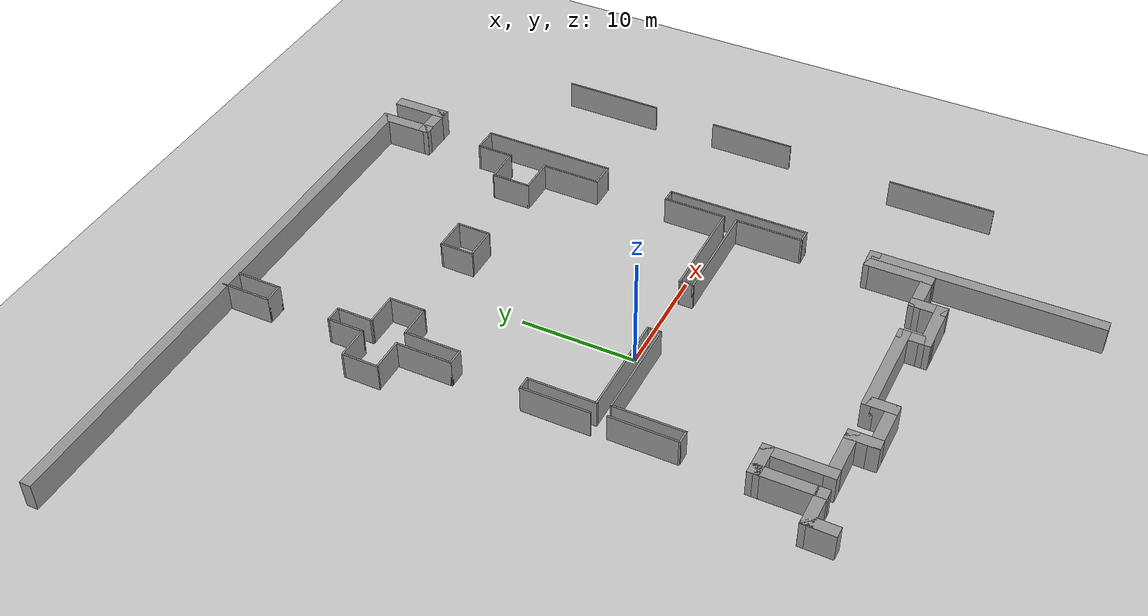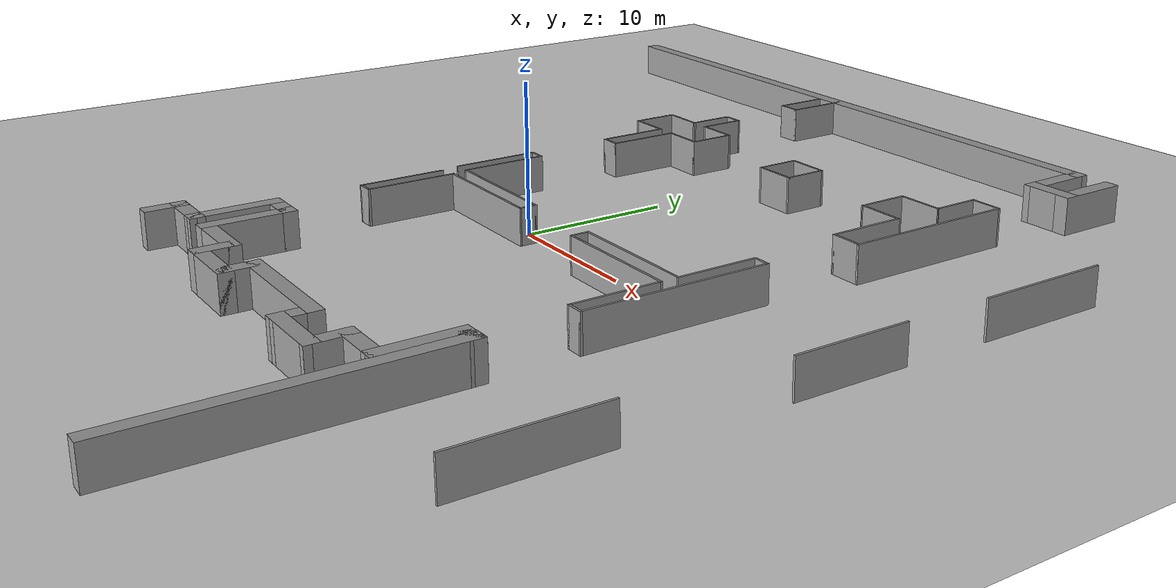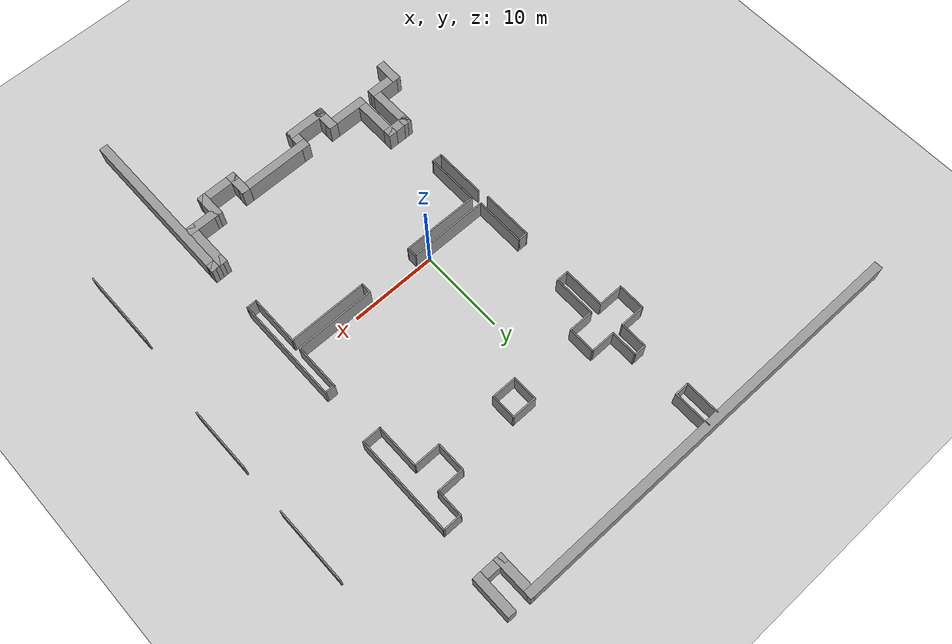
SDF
<sdf version="1.7">
 <world name="default">
  <model name="ground_plane">
   <static>1</static>
   <link name="link">
    <collision name="collision">
     <geometry><plane><normal>0 0 1</normal><size>100 100</size></plane></geometry>
     <surface><friction><ode><mu>100</mu><mu2>50</mu2></ode></friction></surface>
    </collision>
    <visual name="visual">
     <cast_shadows>0</cast_shadows>
     <geometry><plane><normal>0 0 1</normal><size>100 100</size></plane></geometry>
     <material>
      <script><uri>file://media/materials/scripts/gazebo.material</uri><name>Gazebo/Grey</name></script>
     </material>
    </visual>
   </link>
  </model>
  <model name="map7">
   <pose>-22.5342 -8.78038 0 0 -0 0</pose>
   <link name="Wall_10">
    <collision name="Wall_10_Collision">
     <geometry><box><size>3.59994 1 2.5</size></box></geometry>
     <pose>0 0 1.25 0 -0 0</pose>
    </collision>
    <visual name="Wall_10_Visual">
     <pose>0 0 1.25 0 -0 0</pose>
     <geometry><box><size>3.59994 1 2.5</size></box></geometry>
     <material>
      <script><uri>file://media/materials/scripts/gazebo.material</uri><name>Gazebo/Grey</name></script>
      <ambient>1 1 1 1</ambient>
     </material>
     <meta><layer>0</layer></meta>
    </visual>
    <pose>40.1802 37.2854 0 0 -0 0</pose>
   </link>
   <link name="Wall_11">
    <collision name="Wall_11_Collision">
     <geometry><box><size>4.85041 1 2.5</size></box></geometry>
     <pose>0 0 1.25 0 -0 0</pose>
    </collision>
    <visual name="Wall_11_Visual">
     <pose>0 0 1.25 0 -0 0</pose>
     <geometry><box><size>4.85041 1 2.5</size></box></geometry>
     <material>
      <script><uri>file://media/materials/scripts/gazebo.material</uri><name>Gazebo/Grey</name></script>
      <ambient>1 1 1 1</ambient>
     </material>
     <meta><layer>0</layer></meta>
    </visual>
    <pose>41.4802 39.2104 0 0 -0 1.5708</pose>
   </link>
   <link name="Wall_119">
    <collision name="Wall_119_Collision">
     <geometry><box><size>6 0.15 2.5</size></box></geometry>
     <pose>0 0 1.25 0 -0 0</pose>
    </collision>
    <visual name="Wall_119_Visual">
     <pose>0 0 1.25 0 -0 0</pose>
     <geometry><box><size>6 0.15 2.5</size></box></geometry>
     <material>
      <script><uri>file://media/materials/scripts/gazebo.material</uri><name>Gazebo/Grey</name></script>
      <ambient>1 1 1 1</ambient>
     </material>
     <meta><layer>0</layer></meta>
    </visual>
    <pose>13.8301 11.3324 0 0 -0 1.5708</pose>
   </link>
   <link name="Wall_120">
    <collision name="Wall_120_Collision">
     <geometry><box><size>1.25 0.15 2.5</size></box></geometry>
     <pose>0 0 1.25 0 -0 0</pose>
    </collision>
    <visual name="Wall_120_Visual">
     <pose>0 0 1.25 0 -0 0</pose>
     <geometry><box><size>1.25 0.15 2.5</size></box></geometry>
     <material>
      <script><uri>file://media/materials/scripts/gazebo.material</uri><name>Gazebo/Grey</name></script>
      <ambient>1 1 1 1</ambient>
     </material>
     <meta><layer>0</layer></meta>
    </visual>
    <pose>14.3801 14.2574 0 0 -0 0</pose>
   </link>
   <link name="Wall_121">
    <collision name="Wall_121_Collision">
     <geometry><box><size>6 0.15 2.5</size></box></geometry>
     <pose>0 0 1.25 0 -0 0</pose>
    </collision>
    <visual name="Wall_121_Visual">
     <pose>0 0 1.25 0 -0 0</pose>
     <geometry><box><size>6 0.15 2.5</size></box></geometry>
     <material>
      <script><uri>file://media/materials/scripts/gazebo.material</uri><name>Gazebo/Grey</name></script>
      <ambient>1 1 1 1</ambient>
     </material>
     <meta><layer>0</layer></meta>
    </visual>
    <pose>14.9301 11.3324 0 0 -0 -1.5708</pose>
   </link>
   <link name="Wall_122">
    <collision name="Wall_122_Collision">
     <geometry><box><size>9.25 0.15 2.5</size></box></geometry>
     <pose>0 0 1.25 0 -0 0</pose>
    </collision>
    <visual name="Wall_122_Visual">
     <pose>0 0 1.25 0 -0 0</pose>
     <geometry><box><size>9.25 0.15 2.5</size></box></geometry>
     <material>
      <script><uri>file://media/materials/scripts/gazebo.material</uri><name>Gazebo/Grey</name></script>
      <ambient>1 1 1 1</ambient>
     </material>
     <meta><layer>0</layer></meta>
    </visual>
    <pose>19.4801 8.40745 0 0 -0 0</pose>
   </link>
   <link name="Wall_123">
    <collision name="Wall_123_Collision">
     <geometry><box><size>1.25 0.15 2.5</size></box></geometry>
     <pose>0 0 1.25 0 -0 0</pose>
    </collision>
    <visual name="Wall_123_Visual">
     <pose>0 0 1.25 0 -0 0</pose>
     <geometry><box><size>1.25 0.15 2.5</size></box></geometry>
     <material>
      <script><uri>file://media/materials/scripts/gazebo.material</uri><name>Gazebo/Grey</name></script>
      <ambient>1 1 1 1</ambient>
     </material>
     <meta><layer>0</layer></meta>
    </visual>
    <pose>24.0301 7.85745 0 0 -0 -1.5708</pose>
   </link>
   <link name="Wall_124">
    <collision name="Wall_124_Collision">
     <geometry><box><size>9 0.15 2.5</size></box></geometry>
     <pose>0 0 1.25 0 -0 0</pose>
    </collision>
    <visual name="Wall_124_Visual">
     <pose>0 0 1.25 0 -0 0</pose>
     <geometry><box><size>9 0.15 2.5</size></box></geometry>
     <material>
      <script><uri>file://media/materials/scripts/gazebo.material</uri><name>Gazebo/Grey</name></script>
      <ambient>1 1 1 1</ambient>
     </material>
     <meta><layer>0</layer></meta>
    </visual>
    <pose>19.6051 7.30745 0 0 -0 3.14159</pose>
   </link>
   <link name="Wall_125">
    <collision name="Wall_125_Collision">
     <geometry><box><size>6.25 0.15 2.5</size></box></geometry>
     <pose>0 0 1.25 0 -0 0</pose>
    </collision>
    <visual name="Wall_125_Visual">
     <pose>0 0 1.25 0 -0 0</pose>
     <geometry><box><size>6.25 0.15 2.5</size></box></geometry>
     <material>
      <script><uri>file://media/materials/scripts/gazebo.material</uri><name>Gazebo/Grey</name></script>
      <ambient>1 1 1 1</ambient>
     </material>
     <meta><layer>0</layer></meta>
    </visual>
    <pose>15.1801 4.25745 0 0 -0 -1.5708</pose>
   </link>
   <link name="Wall_126">
    <collision name="Wall_126_Collision">
     <geometry><box><size>1.25 0.15 2.5</size></box></geometry>
     <pose>0 0 1.25 0 -0 0</pose>
    </collision>
    <visual name="Wall_126_Visual">
     <pose>0 0 1.25 0 -0 0</pose>
     <geometry><box><size>1.25 0.15 2.5</size></box></geometry>
     <material>
      <script><uri>file://media/materials/scripts/gazebo.material</uri><name>Gazebo/Grey</name></script>
      <ambient>1 1 1 1</ambient>
     </material>
     <meta><layer>0</layer></meta>
    </visual>
    <pose>14.6301 1.20745 0 0 -0 3.14159</pose>
   </link>
   <link name="Wall_127">
    <collision name="Wall_127_Collision">
     <geometry><box><size>6 0.15 2.5</size></box></geometry>
     <pose>0 0 1.25 0 -0 0</pose>
    </collision>
    <visual name="Wall_127_Visual">
     <pose>0 0 1.25 0 -0 0</pose>
     <geometry><box><size>6 0.15 2.5</size></box></geometry>
     <material>
      <script><uri>file://media/materials/scripts/gazebo.material</uri><name>Gazebo/Grey</name></script>
      <ambient>1 1 1 1</ambient>
     </material>
     <meta><layer>0</layer></meta>
    </visual>
    <pose>14.0801 4.13245 0 0 -0 1.5708</pose>
   </link>
   <link name="Wall_131">
    <collision name="Wall_131_Collision">
     <geometry><box><size>9.25 0.15 2.5</size></box></geometry>
     <pose>0 0 1.25 0 -0 0</pose>
    </collision>
    <visual name="Wall_131_Visual">
     <pose>0 0 1.25 0 -0 0</pose>
     <geometry><box><size>9.25 0.15 2.5</size></box></geometry>
     <material>
      <script><uri>file://media/materials/scripts/gazebo.material</uri><name>Gazebo/Grey</name></script>
      <ambient>1 1 1 1</ambient>
     </material>
     <meta><layer>0</layer></meta>
    </visual>
    <pose>34.7213 8.36981 0 0 -0 0</pose>
   </link>
   <link name="Wall_132">
    <collision name="Wall_132_Collision">
     <geometry><box><size>5.5 0.15 2.5</size></box></geometry>
     <pose>0 0 1.25 0 -0 0</pose>
    </collision>
    <visual name="Wall_132_Visual">
     <pose>0 0 1.25 0 -0 0</pose>
     <geometry><box><size>5.5 0.15 2.5</size></box></geometry>
     <material>
      <script><uri>file://media/materials/scripts/gazebo.material</uri><name>Gazebo/Grey</name></script>
      <ambient>1 1 1 1</ambient>
     </material>
     <meta><layer>0</layer></meta>
    </visual>
    <pose>39.2713 11.0448 0 0 -0 1.5708</pose>
   </link>
   <link name="Wall_133">
    <collision name="Wall_133_Collision">
     <geometry><box><size>1.25 0.15 2.5</size></box></geometry>
     <pose>0 0 1.25 0 -0 0</pose>
    </collision>
    <visual name="Wall_133_Visual">
     <pose>0 0 1.25 0 -0 0</pose>
     <geometry><box><size>1.25 0.15 2.5</size></box></geometry>
     <material>
      <script><uri>file://media/materials/scripts/gazebo.material</uri><name>Gazebo/Grey</name></script>
      <ambient>1 1 1 1</ambient>
     </material>
     <meta><layer>0</layer></meta>
    </visual>
    <pose>39.8213 13.7198 0 0 -0 0</pose>
   </link>
   <link name="Wall_134">
    <collision name="Wall_134_Collision">
     <geometry><box><size>12.5 0.15 2.5</size></box></geometry>
     <pose>0 0 1.25 0 -0 0</pose>
    </collision>
    <visual name="Wall_134_Visual">
     <pose>0 0 1.25 0 -0 0</pose>
     <geometry><box><size>12.5 0.15 2.5</size></box></geometry>
     <material>
      <script><uri>file://media/materials/scripts/gazebo.material</uri><name>Gazebo/Grey</name></script>
      <ambient>1 1 1 1</ambient>
     </material>
     <meta><layer>0</layer></meta>
    </visual>
    <pose>40.3713 7.54481 0 0 -0 -1.5708</pose>
   </link>
   <link name="Wall_135">
    <collision name="Wall_135_Collision">
     <geometry><box><size>1.25 0.15 2.5</size></box></geometry>
     <pose>0 0 1.25 0 -0 0</pose>
    </collision>
    <visual name="Wall_135_Visual">
     <pose>0 0 1.25 0 -0 0</pose>
     <geometry><box><size>1.25 0.15 2.5</size></box></geometry>
     <material>
      <script><uri>file://media/materials/scripts/gazebo.material</uri><name>Gazebo/Grey</name></script>
      <ambient>1 1 1 1</ambient>
     </material>
     <meta><layer>0</layer></meta>
    </visual>
    <pose>39.8213 1.36981 0 0 -0 3.14159</pose>
   </link>
   <link name="Wall_136">
    <collision name="Wall_136_Collision">
     <geometry><box><size>6 0.15 2.5</size></box></geometry>
     <pose>0 0 1.25 0 -0 0</pose>
    </collision>
    <visual name="Wall_136_Visual">
     <pose>0 0 1.25 0 -0 0</pose>
     <geometry><box><size>6 0.15 2.5</size></box></geometry>
     <material>
      <script><uri>file://media/materials/scripts/gazebo.material</uri><name>Gazebo/Grey</name></script>
      <ambient>1 1 1 1</ambient>
     </material>
     <meta><layer>0</layer></meta>
    </visual>
    <pose>39.2713 4.29481 0 0 -0 1.5708</pose>
   </link>
   <link name="Wall_137">
    <collision name="Wall_137_Collision">
     <geometry><box><size>9.25 0.15 2.5</size></box></geometry>
     <pose>0 0 1.25 0 -0 0</pose>
    </collision>
    <visual name="Wall_137_Visual">
     <pose>0 0 1.25 0 -0 0</pose>
     <geometry><box><size>9.25 0.15 2.5</size></box></geometry>
     <material>
      <script><uri>file://media/materials/scripts/gazebo.material</uri><name>Gazebo/Grey</name></script>
      <ambient>1 1 1 1</ambient>
     </material>
     <meta><layer>0</layer></meta>
    </visual>
    <pose>34.7213 7.21981 0 0 -0 3.14159</pose>
   </link>
   <link name="Wall_138">
    <collision name="Wall_138_Collision">
     <geometry><box><size>1.25 0.15 2.5</size></box></geometry>
     <pose>0 0 1.25 0 -0 0</pose>
    </collision>
    <visual name="Wall_138_Visual">
     <pose>0 0 1.25 0 -0 0</pose>
     <geometry><box><size>1.25 0.15 2.5</size></box></geometry>
     <material>
      <script><uri>file://media/materials/scripts/gazebo.material</uri><name>Gazebo/Grey</name></script>
      <ambient>1 1 1 1</ambient>
     </material>
     <meta><layer>0</layer></meta>
    </visual>
    <pose>30.1713 7.76981 0 0 -0 1.5708</pose>
   </link>
   <link name="Wall_145">
    <collision name="Wall_145_Collision">
     <geometry><box><size>3.25 0.15 2.5</size></box></geometry>
     <pose>0 0 1.25 0 -0 0</pose>
    </collision>
    <visual name="Wall_145_Visual">
     <pose>0 0 1.25 0 -0 0</pose>
     <geometry><box><size>3.25 0.15 2.5</size></box></geometry>
     <material>
      <script><uri>file://media/materials/scripts/gazebo.material</uri><name>Gazebo/Grey</name></script>
      <ambient>1 1 1 1</ambient>
     </material>
     <meta><layer>0</layer></meta>
    </visual>
    <pose>10.9844 26.7139 0 0 -0 -1.5708</pose>
   </link>
   <link name="Wall_146">
    <collision name="Wall_146_Collision">
     <geometry><box><size>3 0.15 2.5</size></box></geometry>
     <pose>0 0 1.25 0 -0 0</pose>
    </collision>
    <visual name="Wall_146_Visual">
     <pose>0 0 1.25 0 -0 0</pose>
     <geometry><box><size>3 0.15 2.5</size></box></geometry>
     <material>
      <script><uri>file://media/materials/scripts/gazebo.material</uri><name>Gazebo/Grey</name></script>
      <ambient>1 1 1 1</ambient>
     </material>
     <meta><layer>0</layer></meta>
    </visual>
    <pose>12.4094 25.1639 0 0 -0 0</pose>
   </link>
   <link name="Wall_147">
    <collision name="Wall_147_Collision">
     <geometry><box><size>5 0.15 2.5</size></box></geometry>
     <pose>0 0 1.25 0 -0 0</pose>
    </collision>
    <visual name="Wall_147_Visual">
     <pose>0 0 1.25 0 -0 0</pose>
     <geometry><box><size>5 0.15 2.5</size></box></geometry>
     <material>
      <script><uri>file://media/materials/scripts/gazebo.material</uri><name>Gazebo/Grey</name></script>
      <ambient>1 1 1 1</ambient>
     </material>
     <meta><layer>0</layer></meta>
    </visual>
    <pose>13.8344 22.7389 0 0 -0 -1.5708</pose>
   </link>
   <link name="Wall_148">
    <collision name="Wall_148_Collision">
     <geometry><box><size>1.5 0.15 2.5</size></box></geometry>
     <pose>0 0 1.25 0 -0 0</pose>
    </collision>
    <visual name="Wall_148_Visual">
     <pose>0 0 1.25 0 -0 0</pose>
     <geometry><box><size>1.5 0.15 2.5</size></box></geometry>
     <material>
      <script><uri>file://media/materials/scripts/gazebo.material</uri><name>Gazebo/Grey</name></script>
      <ambient>1 1 1 1</ambient>
     </material>
     <meta><layer>0</layer></meta>
    </visual>
    <pose>14.5094 20.3139 0 0 -0 0</pose>
   </link>
   <link name="Wall_149">
    <collision name="Wall_149_Collision">
     <geometry><box><size>5 0.15 2.5</size></box></geometry>
     <pose>0 0 1.25 0 -0 0</pose>
    </collision>
    <visual name="Wall_149_Visual">
     <pose>0 0 1.25 0 -0 0</pose>
     <geometry><box><size>5 0.15 2.5</size></box></geometry>
     <material>
      <script><uri>file://media/materials/scripts/gazebo.material</uri><name>Gazebo/Grey</name></script>
      <ambient>1 1 1 1</ambient>
     </material>
     <meta><layer>0</layer></meta>
    </visual>
    <pose>15.1844 22.7389 0 0 -0 1.5708</pose>
   </link>
   <link name="Wall_150">
    <collision name="Wall_150_Collision">
     <geometry><box><size>3 0.15 2.5</size></box></geometry>
     <pose>0 0 1.25 0 -0 0</pose>
    </collision>
    <visual name="Wall_150_Visual">
     <pose>0 0 1.25 0 -0 0</pose>
     <geometry><box><size>3 0.15 2.5</size></box></geometry>
     <material>
      <script><uri>file://media/materials/scripts/gazebo.material</uri><name>Gazebo/Grey</name></script>
      <ambient>1 1 1 1</ambient>
     </material>
     <meta><layer>0</layer></meta>
    </visual>
    <pose>16.6094 25.1639 0 0 -0 0</pose>
   </link>
   <link name="Wall_151">
    <collision name="Wall_151_Collision">
     <geometry><box><size>3.25 0.15 2.5</size></box></geometry>
     <pose>0 0 1.25 0 -0 0</pose>
    </collision>
    <visual name="Wall_151_Visual">
     <pose>0 0 1.25 0 -0 0</pose>
     <geometry><box><size>3.25 0.15 2.5</size></box></geometry>
     <material>
      <script><uri>file://media/materials/scripts/gazebo.material</uri><name>Gazebo/Grey</name></script>
      <ambient>1 1 1 1</ambient>
     </material>
     <meta><layer>0</layer></meta>
    </visual>
    <pose>18.0344 26.7139 0 0 -0 1.5708</pose>
   </link>
   <link name="Wall_152">
    <collision name="Wall_152_Collision">
     <geometry><box><size>3 0.15 2.5</size></box></geometry>
     <pose>0 0 1.25 0 -0 0</pose>
    </collision>
    <visual name="Wall_152_Visual">
     <pose>0 0 1.25 0 -0 0</pose>
     <geometry><box><size>3 0.15 2.5</size></box></geometry>
     <material>
      <script><uri>file://media/materials/scripts/gazebo.material</uri><name>Gazebo/Grey</name></script>
      <ambient>1 1 1 1</ambient>
     </material>
     <meta><layer>0</layer></meta>
    </visual>
    <pose>16.6094 28.2639 0 0 -0 3.14159</pose>
   </link>
   <link name="Wall_153">
    <collision name="Wall_153_Collision">
     <geometry><box><size>3.25 0.15 2.5</size></box></geometry>
     <pose>0 0 1.25 0 -0 0</pose>
    </collision>
    <visual name="Wall_153_Visual">
     <pose>0 0 1.25 0 -0 0</pose>
     <geometry><box><size>3.25 0.15 2.5</size></box></geometry>
     <material>
      <script><uri>file://media/materials/scripts/gazebo.material</uri><name>Gazebo/Grey</name></script>
      <ambient>1 1 1 1</ambient>
     </material>
     <meta><layer>0</layer></meta>
    </visual>
    <pose>15.1844 29.8139 0 0 -0 1.5708</pose>
   </link>
   <link name="Wall_154">
    <collision name="Wall_154_Collision">
     <geometry><box><size>1.5 0.15 2.5</size></box></geometry>
     <pose>0 0 1.25 0 -0 0</pose>
    </collision>
    <visual name="Wall_154_Visual">
     <pose>0 0 1.25 0 -0 0</pose>
     <geometry><box><size>1.5 0.15 2.5</size></box></geometry>
     <material>
      <script><uri>file://media/materials/scripts/gazebo.material</uri><name>Gazebo/Grey</name></script>
      <ambient>1 1 1 1</ambient>
     </material>
     <meta><layer>0</layer></meta>
    </visual>
    <pose>14.5094 31.3639 0 0 -0 3.14159</pose>
   </link>
   <link name="Wall_155">
    <collision name="Wall_155_Collision">
     <geometry><box><size>3.25 0.15 2.5</size></box></geometry>
     <pose>0 0 1.25 0 -0 0</pose>
    </collision>
    <visual name="Wall_155_Visual">
     <pose>0 0 1.25 0 -0 0</pose>
     <geometry><box><size>3.25 0.15 2.5</size></box></geometry>
     <material>
      <script><uri>file://media/materials/scripts/gazebo.material</uri><name>Gazebo/Grey</name></script>
      <ambient>1 1 1 1</ambient>
     </material>
     <meta><layer>0</layer></meta>
    </visual>
    <pose>13.8344 29.8139 0 0 -0 -1.5708</pose>
   </link>
   <link name="Wall_157">
    <collision name="Wall_157_Collision">
     <geometry><box><size>3 0.15 2.5</size></box></geometry>
     <pose>0 0 1.25 0 -0 0</pose>
    </collision>
    <visual name="Wall_157_Visual">
     <pose>0 0 1.25 0 -0 0</pose>
     <geometry><box><size>3 0.15 2.5</size></box></geometry>
     <material>
      <script><uri>file://media/materials/scripts/gazebo.material</uri><name>Gazebo/Grey</name></script>
      <ambient>1 1 1 1</ambient>
     </material>
     <meta><layer>0</layer></meta>
    </visual>
    <pose>25.6969 26.5543 0 0 -0 -1.5708</pose>
   </link>
   <link name="Wall_158">
    <collision name="Wall_158_Collision">
     <geometry><box><size>3 0.15 2.5</size></box></geometry>
     <pose>0 0 1.25 0 -0 0</pose>
    </collision>
    <visual name="Wall_158_Visual">
     <pose>0 0 1.25 0 -0 0</pose>
     <geometry><box><size>3 0.15 2.5</size></box></geometry>
     <material>
      <script><uri>file://media/materials/scripts/gazebo.material</uri><name>Gazebo/Grey</name></script>
      <ambient>1 1 1 1</ambient>
     </material>
     <meta><layer>0</layer></meta>
    </visual>
    <pose>27.1219 25.1293 0 0 -0 0</pose>
   </link>
   <link name="Wall_159">
    <collision name="Wall_159_Collision">
     <geometry><box><size>3 0.15 2.5</size></box></geometry>
     <pose>0 0 1.25 0 -0 0</pose>
    </collision>
    <visual name="Wall_159_Visual">
     <pose>0 0 1.25 0 -0 0</pose>
     <geometry><box><size>3 0.15 2.5</size></box></geometry>
     <material>
      <script><uri>file://media/materials/scripts/gazebo.material</uri><name>Gazebo/Grey</name></script>
      <ambient>1 1 1 1</ambient>
     </material>
     <meta><layer>0</layer></meta>
    </visual>
    <pose>28.5469 26.5543 0 0 -0 1.5708</pose>
   </link>
   <link name="Wall_160">
    <collision name="Wall_160_Collision">
     <geometry><box><size>3 0.15 2.5</size></box></geometry>
     <pose>0 0 1.25 0 -0 0</pose>
    </collision>
    <visual name="Wall_160_Visual">
     <pose>0 0 1.25 0 -0 0</pose>
     <geometry><box><size>3 0.15 2.5</size></box></geometry>
     <material>
      <script><uri>file://media/materials/scripts/gazebo.material</uri><name>Gazebo/Grey</name></script>
      <ambient>1 1 1 1</ambient>
     </material>
     <meta><layer>0</layer></meta>
    </visual>
    <pose>27.1219 27.9793 0 0 -0 3.14159</pose>
   </link>
   <link name="Wall_162">
    <collision name="Wall_162_Collision">
     <geometry><box><size>3.5 0.15 2.5</size></box></geometry>
     <pose>0 0 1.25 0 -0 0</pose>
    </collision>
    <visual name="Wall_162_Visual">
     <pose>0 0 1.25 0 -0 0</pose>
     <geometry><box><size>3.5 0.15 2.5</size></box></geometry>
     <material>
      <script><uri>file://media/materials/scripts/gazebo.material</uri><name>Gazebo/Grey</name></script>
      <ambient>1 1 1 1</ambient>
     </material>
     <meta><layer>0</layer></meta>
    </visual>
    <pose>35.6855 26.845 0 0 -0 -1.5708</pose>
   </link>
   <link name="Wall_163">
    <collision name="Wall_163_Collision">
     <geometry><box><size>3.25 0.15 2.5</size></box></geometry>
     <pose>0 0 1.25 0 -0 0</pose>
    </collision>
    <visual name="Wall_163_Visual">
     <pose>0 0 1.25 0 -0 0</pose>
     <geometry><box><size>3.25 0.15 2.5</size></box></geometry>
     <material>
      <script><uri>file://media/materials/scripts/gazebo.material</uri><name>Gazebo/Grey</name></script>
      <ambient>1 1 1 1</ambient>
     </material>
     <meta><layer>0</layer></meta>
    </visual>
    <pose>37.2355 25.17 0 0 -0 0</pose>
   </link>
   <link name="Wall_164">
    <collision name="Wall_164_Collision">
     <geometry><box><size>5.25 0.15 2.5</size></box></geometry>
     <pose>0 0 1.25 0 -0 0</pose>
    </collision>
    <visual name="Wall_164_Visual">
     <pose>0 0 1.25 0 -0 0</pose>
     <geometry><box><size>5.25 0.15 2.5</size></box></geometry>
     <material>
      <script><uri>file://media/materials/scripts/gazebo.material</uri><name>Gazebo/Grey</name></script>
      <ambient>1 1 1 1</ambient>
     </material>
     <meta><layer>0</layer></meta>
    </visual>
    <pose>38.7855 22.62 0 0 -0 -1.5708</pose>
   </link>
   <link name="Wall_165">
    <collision name="Wall_165_Collision">
     <geometry><box><size>2.25 0.15 2.5</size></box></geometry>
     <pose>0 0 1.25 0 -0 0</pose>
    </collision>
    <visual name="Wall_165_Visual">
     <pose>0 0 1.25 0 -0 0</pose>
     <geometry><box><size>2.25 0.15 2.5</size></box></geometry>
     <material>
      <script><uri>file://media/materials/scripts/gazebo.material</uri><name>Gazebo/Grey</name></script>
      <ambient>1 1 1 1</ambient>
     </material>
     <meta><layer>0</layer></meta>
    </visual>
    <pose>39.8355 20.07 0 0 -0 0</pose>
   </link>
   <link name="Wall_166">
    <collision name="Wall_166_Collision">
     <geometry><box><size>11.75 0.15 2.5</size></box></geometry>
     <pose>0 0 1.25 0 -0 0</pose>
    </collision>
    <visual name="Wall_166_Visual">
     <pose>0 0 1.25 0 -0 0</pose>
     <geometry><box><size>11.75 0.15 2.5</size></box></geometry>
     <material>
      <script><uri>file://media/materials/scripts/gazebo.material</uri><name>Gazebo/Grey</name></script>
      <ambient>1 1 1 1</ambient>
     </material>
     <meta><layer>0</layer></meta>
    </visual>
    <pose>40.8855 25.87 0 0 -0 1.5708</pose>
   </link>
   <link name="Wall_167">
    <collision name="Wall_167_Collision">
     <geometry><box><size>2.25 0.15 2.5</size></box></geometry>
     <pose>0 0 1.25 0 -0 0</pose>
    </collision>
    <visual name="Wall_167_Visual">
     <pose>0 0 1.25 0 -0 0</pose>
     <geometry><box><size>2.25 0.15 2.5</size></box></geometry>
     <material>
      <script><uri>file://media/materials/scripts/gazebo.material</uri><name>Gazebo/Grey</name></script>
      <ambient>1 1 1 1</ambient>
     </material>
     <meta><layer>0</layer></meta>
    </visual>
    <pose>39.8355 31.67 0 0 -0 3.14159</pose>
   </link>
   <link name="Wall_168">
    <collision name="Wall_168_Collision">
     <geometry><box><size>3.25 0.15 2.5</size></box></geometry>
     <pose>0 0 1.25 0 -0 0</pose>
    </collision>
    <visual name="Wall_168_Visual">
     <pose>0 0 1.25 0 -0 0</pose>
     <geometry><box><size>3.25 0.15 2.5</size></box></geometry>
     <material>
      <script><uri>file://media/materials/scripts/gazebo.material</uri><name>Gazebo/Grey</name></script>
      <ambient>1 1 1 1</ambient>
     </material>
     <meta><layer>0</layer></meta>
    </visual>
    <pose>38.7855 30.12 0 0 -0 -1.5708</pose>
   </link>
   <link name="Wall_169">
    <collision name="Wall_169_Collision">
     <geometry><box><size>3.2504 0.15 2.5</size></box></geometry>
     <pose>0 0 1.25 0 -0 0</pose>
    </collision>
    <visual name="Wall_169_Visual">
     <pose>0 0 1.25 0 -0 0</pose>
     <geometry><box><size>3.2504 0.15 2.5</size></box></geometry>
     <material>
      <script><uri>file://media/materials/scripts/gazebo.material</uri><name>Gazebo/Grey</name></script>
      <ambient>1 1 1 1</ambient>
     </material>
     <meta><layer>0</layer></meta>
    </visual>
    <pose>37.2355 28.545 0 0 -0 -3.12547</pose>
   </link>
   <link name="Wall_171">
    <collision name="Wall_171_Collision">
     <geometry><box><size>8.75 0.15 2.5</size></box></geometry>
     <pose>0 0 1.25 0 -0 0</pose>
    </collision>
    <visual name="Wall_171_Visual">
     <pose>0 0 1.25 0 -0 0</pose>
     <geometry><box><size>8.75 0.15 2.5</size></box></geometry>
     <material>
      <script><uri>file://media/materials/scripts/gazebo.material</uri><name>Gazebo/Grey</name></script>
      <ambient>1 1 1 1</ambient>
     </material>
     <meta><layer>0</layer></meta>
    </visual>
    <pose>50.969 24.3152 0 0 -0 -1.5708</pose>
   </link>
   <link name="Wall_187">
    <collision name="Wall_187_Collision">
     <geometry><box><size>7.5 0.15 2.5</size></box></geometry>
     <pose>0 0 1.25 0 -0 0</pose>
    </collision>
    <visual name="Wall_187_Visual">
     <pose>0 0 1.25 0 -0 0</pose>
     <geometry><box><size>7.5 0.15 2.5</size></box></geometry>
     <material>
      <script><uri>file://media/materials/scripts/gazebo.material</uri><name>Gazebo/Grey</name></script>
      <ambient>1 1 1 1</ambient>
     </material>
     <meta><layer>0</layer></meta>
    </visual>
    <pose>50.8899 10.5676 0 0 -0 -1.5708</pose>
   </link>
   <link name="Wall_202">
    <collision name="Wall_202_Collision">
     <geometry><box><size>9.25 0.15 2.5</size></box></geometry>
     <pose>0 0 1.25 0 -0 0</pose>
    </collision>
    <visual name="Wall_202_Visual">
     <pose>0 0 1.25 0 -0 0</pose>
     <geometry><box><size>9.25 0.15 2.5</size></box></geometry>
     <material>
      <script><uri>file://media/materials/scripts/gazebo.material</uri><name>Gazebo/Grey</name></script>
      <ambient>1 1 1 1</ambient>
     </material>
     <meta><layer>0</layer></meta>
    </visual>
    <pose>49.995 -7.29637 0 0 -0 -1.5708</pose>
   </link>
   <link name="Wall_217">
    <collision name="Wall_217_Collision">
     <geometry><box><size>4.5 0.15 2.5</size></box></geometry>
     <pose>0 0 1.25 0 -0 0</pose>
    </collision>
    <visual name="Wall_217_Visual">
     <pose>0 0 1.25 0 -0 0</pose>
     <geometry><box><size>4.5 0.15 2.5</size></box></geometry>
     <material>
      <script><uri>file://media/materials/scripts/gazebo.material</uri><name>Gazebo/Grey</name></script>
      <ambient>1 1 1 1</ambient>
     </material>
     <meta><layer>0</layer></meta>
    </visual>
    <pose>13.613 39.1878 0 0 -0 -1.5708</pose>
   </link>
   <link name="Wall_218">
    <collision name="Wall_218_Collision">
     <geometry><box><size>1.75 0.15 2.5</size></box></geometry>
     <pose>0 0 1.25 0 -0 0</pose>
    </collision>
    <visual name="Wall_218_Visual">
     <pose>0 0 1.25 0 -0 0</pose>
     <geometry><box><size>1.75 0.15 2.5</size></box></geometry>
     <material>
      <script><uri>file://media/materials/scripts/gazebo.material</uri><name>Gazebo/Grey</name></script>
      <ambient>1 1 1 1</ambient>
     </material>
     <meta><layer>0</layer></meta>
    </visual>
    <pose>14.413 37.0128 0 0 -0 0</pose>
   </link>
   <link name="Wall_219">
    <collision name="Wall_219_Collision">
     <geometry><box><size>4.5 0.15 2.5</size></box></geometry>
     <pose>0 0 1.25 0 -0 0</pose>
    </collision>
    <visual name="Wall_219_Visual">
     <pose>0 0 1.25 0 -0 0</pose>
     <geometry><box><size>4.5 0.15 2.5</size></box></geometry>
     <material>
      <script><uri>file://media/materials/scripts/gazebo.material</uri><name>Gazebo/Grey</name></script>
      <ambient>1 1 1 1</ambient>
     </material>
     <meta><layer>0</layer></meta>
    </visual>
    <pose>15.213 39.1878 0 0 -0 1.5708</pose>
   </link>
   <link name="Wall_230">
    <collision name="Wall_230_Collision">
     <geometry><box><size>3 0.15 2.5</size></box></geometry>
     <pose>0 0 1.25 0 -0 0</pose>
    </collision>
    <visual name="Wall_230_Visual">
     <pose>0 0 1.25 0 -0 0</pose>
     <geometry><box><size>3 0.15 2.5</size></box></geometry>
     <material>
      <script><uri>file://media/materials/scripts/gazebo.material</uri><name>Gazebo/Grey</name></script>
      <ambient>1 1 1 1</ambient>
     </material>
     <meta><layer>0</layer></meta>
    </visual>
    <pose>12.4094 28.2639 0 0 -0 0</pose>
   </link>
   <link name="Wall_35">
    <collision name="Wall_35_Collision">
     <geometry><box><size>19.8501 1 2.5</size></box></geometry>
     <pose>0 0 1.25 0 -0 0</pose>
    </collision>
    <visual name="Wall_35_Visual">
     <pose>0 0 1.25 0 -0 0</pose>
     <geometry><box><size>19.8501 1 2.5</size></box></geometry>
     <material>
      <script><uri>file://media/materials/scripts/gazebo.material</uri><name>Gazebo/Grey</name></script>
      <ambient>1 1 1 1</ambient>
     </material>
     <meta><layer>0</layer></meta>
    </visual>
    <pose>40.126 -14.1174 0 0 -0 1.57145</pose>
   </link>
   <link name="Wall_36">
    <collision name="Wall_36_Collision">
     <geometry><box><size>1.96062 1 2.5</size></box></geometry>
     <pose>0 0 1.25 0 -0 0</pose>
    </collision>
    <visual name="Wall_36_Visual">
     <pose>0 0 1.25 0 -0 0</pose>
     <geometry><box><size>1.96062 1 2.5</size></box></geometry>
     <material>
      <script><uri>file://media/materials/scripts/gazebo.material</uri><name>Gazebo/Grey</name></script>
      <ambient>1 1 1 1</ambient>
     </material>
     <meta><layer>0</layer></meta>
    </visual>
    <pose>39.6334 -4.70343 0 0 -0 -3.1183</pose>
   </link>
   <link name="Wall_37">
    <collision name="Wall_37_Collision">
     <geometry><box><size>5.85 1 2.5</size></box></geometry>
     <pose>0 0 1.25 0 -0 0</pose>
    </collision>
    <visual name="Wall_37_Visual">
     <pose>0 0 1.25 0 -0 0</pose>
     <geometry><box><size>5.85 1 2.5</size></box></geometry>
     <material>
      <script><uri>file://media/materials/scripts/gazebo.material</uri><name>Gazebo/Grey</name></script>
      <ambient>1 1 1 1</ambient>
     </material>
     <meta><layer>0</layer></meta>
    </visual>
    <pose>39.1562 -7.13962 0 0 -0 -1.56956</pose>
   </link>
   <link name="Wall_38">
    <collision name="Wall_38_Collision">
     <geometry><box><size>4.10002 1 2.5</size></box></geometry>
     <pose>0 0 1.25 0 -0 0</pose>
    </collision>
    <visual name="Wall_38_Visual">
     <pose>0 0 1.25 0 -0 0</pose>
     <geometry><box><size>4.10002 1 2.5</size></box></geometry>
     <material>
      <script><uri>file://media/materials/scripts/gazebo.material</uri><name>Gazebo/Grey</name></script>
      <ambient>1 1 1 1</ambient>
     </material>
     <meta><layer>0</layer></meta>
    </visual>
    <pose>37.6092 -9.55862 0 0 -0 3.13772</pose>
   </link>
   <link name="Wall_39">
    <collision name="Wall_39_Collision">
     <geometry><box><size>3.10063 1 2.5</size></box></geometry>
     <pose>0 0 1.25 0 -0 0</pose>
    </collision>
    <visual name="Wall_39_Visual">
     <pose>0 0 1.25 0 -0 0</pose>
     <geometry><box><size>3.10063 1 2.5</size></box></geometry>
     <material>
      <script><uri>file://media/materials/scripts/gazebo.material</uri><name>Gazebo/Grey</name></script>
      <ambient>1 1 1 1</ambient>
     </material>
     <meta><layer>0</layer></meta>
    </visual>
    <pose>36.0592 -10.6031 0 0 -0 -1.5708</pose>
   </link>
   <link name="Wall_40">
    <collision name="Wall_40_Collision">
     <geometry><box><size>4.85 1 2.5</size></box></geometry>
     <pose>0 0 1.25 0 -0 0</pose>
    </collision>
    <visual name="Wall_40_Visual">
     <pose>0 0 1.25 0 -0 0</pose>
     <geometry><box><size>4.85 1 2.5</size></box></geometry>
     <material>
      <script><uri>file://media/materials/scripts/gazebo.material</uri><name>Gazebo/Grey</name></script>
      <ambient>1 1 1 1</ambient>
     </material>
     <meta><layer>0</layer></meta>
    </visual>
    <pose>34.1342 -11.6591 0 0 -0 -3.13874</pose>
   </link>
   <link name="Wall_41">
    <collision name="Wall_41_Collision">
     <geometry><box><size>2.85 1 2.5</size></box></geometry>
     <pose>0 0 1.25 0 -0 0</pose>
    </collision>
    <visual name="Wall_41_Visual">
     <pose>0 0 1.25 0 -0 0</pose>
     <geometry><box><size>2.85 1 2.5</size></box></geometry>
     <material>
      <script><uri>file://media/materials/scripts/gazebo.material</uri><name>Gazebo/Grey</name></script>
      <ambient>1 1 1 1</ambient>
     </material>
     <meta><layer>0</layer></meta>
    </visual>
    <pose>32.2092 -10.7396 0 0 -0 1.5708</pose>
   </link>
   <link name="Wall_42">
    <collision name="Wall_42_Collision">
     <geometry><box><size>9.1 1 2.5</size></box></geometry>
     <pose>0 0 1.25 0 -0 0</pose>
    </collision>
    <visual name="Wall_42_Visual">
     <pose>0 0 1.25 0 -0 0</pose>
     <geometry><box><size>9.1 1 2.5</size></box></geometry>
     <material>
      <script><uri>file://media/materials/scripts/gazebo.material</uri><name>Gazebo/Grey</name></script>
      <ambient>1 1 1 1</ambient>
     </material>
     <meta><layer>0</layer></meta>
    </visual>
    <pose>28.1592 -9.81462 0 0 -0 3.14159</pose>
   </link>
   <link name="Wall_43">
    <collision name="Wall_43_Collision">
     <geometry><box><size>2.85 1 2.5</size></box></geometry>
     <pose>0 0 1.25 0 -0 0</pose>
    </collision>
    <visual name="Wall_43_Visual">
     <pose>0 0 1.25 0 -0 0</pose>
     <geometry><box><size>2.85 1 2.5</size></box></geometry>
     <material>
      <script><uri>file://media/materials/scripts/gazebo.material</uri><name>Gazebo/Grey</name></script>
      <ambient>1 1 1 1</ambient>
     </material>
     <meta><layer>0</layer></meta>
    </visual>
    <pose>24.1092 -10.7396 0 0 -0 -1.5708</pose>
   </link>
   <link name="Wall_44">
    <collision name="Wall_44_Collision">
     <geometry><box><size>4.85 1 2.5</size></box></geometry>
     <pose>0 0 1.25 0 -0 0</pose>
    </collision>
    <visual name="Wall_44_Visual">
     <pose>0 0 1.25 0 -0 0</pose>
     <geometry><box><size>4.85 1 2.5</size></box></geometry>
     <material>
      <script><uri>file://media/materials/scripts/gazebo.material</uri><name>Gazebo/Grey</name></script>
      <ambient>1 1 1 1</ambient>
     </material>
     <meta><layer>0</layer></meta>
    </visual>
    <pose>22.1842 -11.6646 0 0 -0 3.14159</pose>
   </link>
   <link name="Wall_45">
    <collision name="Wall_45_Collision">
     <geometry><box><size>2.85 1 2.5</size></box></geometry>
     <pose>0 0 1.25 0 -0 0</pose>
    </collision>
    <visual name="Wall_45_Visual">
     <pose>0 0 1.25 0 -0 0</pose>
     <geometry><box><size>2.85 1 2.5</size></box></geometry>
     <material>
      <script><uri>file://media/materials/scripts/gazebo.material</uri><name>Gazebo/Grey</name></script>
      <ambient>1 1 1 1</ambient>
     </material>
     <meta><layer>0</layer></meta>
    </visual>
    <pose>20.2592 -10.7396 0 0 -0 1.5708</pose>
   </link>
   <link name="Wall_46">
    <collision name="Wall_46_Collision">
     <geometry><box><size>5.1 1 2.5</size></box></geometry>
     <pose>0 0 1.25 0 -0 0</pose>
    </collision>
    <visual name="Wall_46_Visual">
     <pose>0 0 1.25 0 -0 0</pose>
     <geometry><box><size>5.1 1 2.5</size></box></geometry>
     <material>
      <script><uri>file://media/materials/scripts/gazebo.material</uri><name>Gazebo/Grey</name></script>
      <ambient>1 1 1 1</ambient>
     </material>
     <meta><layer>0</layer></meta>
    </visual>
    <pose>18.2092 -9.81462 0 0 -0 3.14159</pose>
   </link>
   <link name="Wall_47">
    <collision name="Wall_47_Collision">
     <geometry><box><size>6.1 1 2.5</size></box></geometry>
     <pose>0 0 1.25 0 -0 0</pose>
    </collision>
    <visual name="Wall_47_Visual">
     <pose>0 0 1.25 0 -0 0</pose>
     <geometry><box><size>6.1 1 2.5</size></box></geometry>
     <material>
      <script><uri>file://media/materials/scripts/gazebo.material</uri><name>Gazebo/Grey</name></script>
      <ambient>1 1 1 1</ambient>
     </material>
     <meta><layer>0</layer></meta>
    </visual>
    <pose>16.1592 -7.26462 0 0 -0 1.5708</pose>
   </link>
   <link name="Wall_48">
    <collision name="Wall_48_Collision">
     <geometry><box><size>3.1 1 2.5</size></box></geometry>
     <pose>0 0 1.25 0 -0 0</pose>
    </collision>
    <visual name="Wall_48_Visual">
     <pose>0 0 1.25 0 -0 0</pose>
     <geometry><box><size>3.1 1 2.5</size></box></geometry>
     <material>
      <script><uri>file://media/materials/scripts/gazebo.material</uri><name>Gazebo/Grey</name></script>
      <ambient>1 1 1 1</ambient>
     </material>
     <meta><layer>0</layer></meta>
    </visual>
    <pose>15.1092 -4.71462 0 0 -0 3.14159</pose>
   </link>
   <link name="Wall_49">
    <collision name="Wall_49_Collision">
     <geometry><box><size>6.10005 1 2.5</size></box></geometry>
     <pose>0 0 1.25 0 -0 0</pose>
    </collision>
    <visual name="Wall_49_Visual">
     <pose>0 0 1.25 0 -0 0</pose>
     <geometry><box><size>6.10005 1 2.5</size></box></geometry>
     <material>
      <script><uri>file://media/materials/scripts/gazebo.material</uri><name>Gazebo/Grey</name></script>
      <ambient>1 1 1 1</ambient>
     </material>
     <meta><layer>0</layer></meta>
    </visual>
    <pose>14.0707 -7.26462 0 0 -0 -1.56629</pose>
   </link>
   <link name="Wall_50">
    <collision name="Wall_50_Collision">
     <geometry><box><size>3.85026 1 2.5</size></box></geometry>
     <pose>0 0 1.25 0 -0 0</pose>
    </collision>
    <visual name="Wall_50_Visual">
     <pose>0 0 1.25 0 -0 0</pose>
     <geometry><box><size>3.85026 1 2.5</size></box></geometry>
     <material>
      <script><uri>file://media/materials/scripts/gazebo.material</uri><name>Gazebo/Grey</name></script>
      <ambient>1 1 1 1</ambient>
     </material>
     <meta><layer>0</layer></meta>
    </visual>
    <pose>12.6572 -9.81462 0 0 -0 3.14159</pose>
   </link>
   <link name="Wall_51">
    <collision name="Wall_51_Collision">
     <geometry><box><size>2.85 1 2.5</size></box></geometry>
     <pose>0 0 1.25 0 -0 0</pose>
    </collision>
    <visual name="Wall_51_Visual">
     <pose>0 0 1.25 0 -0 0</pose>
     <geometry><box><size>2.85 1 2.5</size></box></geometry>
     <material>
      <script><uri>file://media/materials/scripts/gazebo.material</uri><name>Gazebo/Grey</name></script>
      <ambient>1 1 1 1</ambient>
     </material>
     <meta><layer>0</layer></meta>
    </visual>
    <pose>11.2207 -10.7396 0 0 -0 -1.58323</pose>
   </link>
   <link name="Wall_8">
    <collision name="Wall_8_Collision">
     <geometry><box><size>49.6 1 2.5</size></box></geometry>
     <pose>0 0 1.25 0 -0 0</pose>
    </collision>
    <visual name="Wall_8_Visual">
     <pose>0 0 1.25 0 -0 0</pose>
     <geometry><box><size>49.6 1 2.5</size></box></geometry>
     <material>
      <script><uri>file://media/materials/scripts/gazebo.material</uri><name>Gazebo/Grey</name></script>
      <ambient>1 1 1 1</ambient>
     </material>
     <meta><layer>0</layer></meta>
    </visual>
    <pose>14.5318 41.3134 0 0 -0 0</pose>
   </link>
   <link name="Wall_9">
    <collision name="Wall_9_Collision">
     <geometry><box><size>5.02828 1 2.5</size></box></geometry>
     <pose>0 0 1.25 0 -0 0</pose>
    </collision>
    <visual name="Wall_9_Visual">
     <pose>0 0 1.25 0 -0 0</pose>
     <geometry><box><size>5.02828 1 2.5</size></box></geometry>
     <material>
      <script><uri>file://media/materials/scripts/gazebo.material</uri><name>Gazebo/Grey</name></script>
      <ambient>1 1 1 1</ambient>
     </material>
     <meta><layer>0</layer></meta>
    </visual>
    <pose>38.856 39.2994 0 0 -0 -1.55878</pose>
   </link>
   <static>1</static>
  </model>
 </world>
</sdf>
